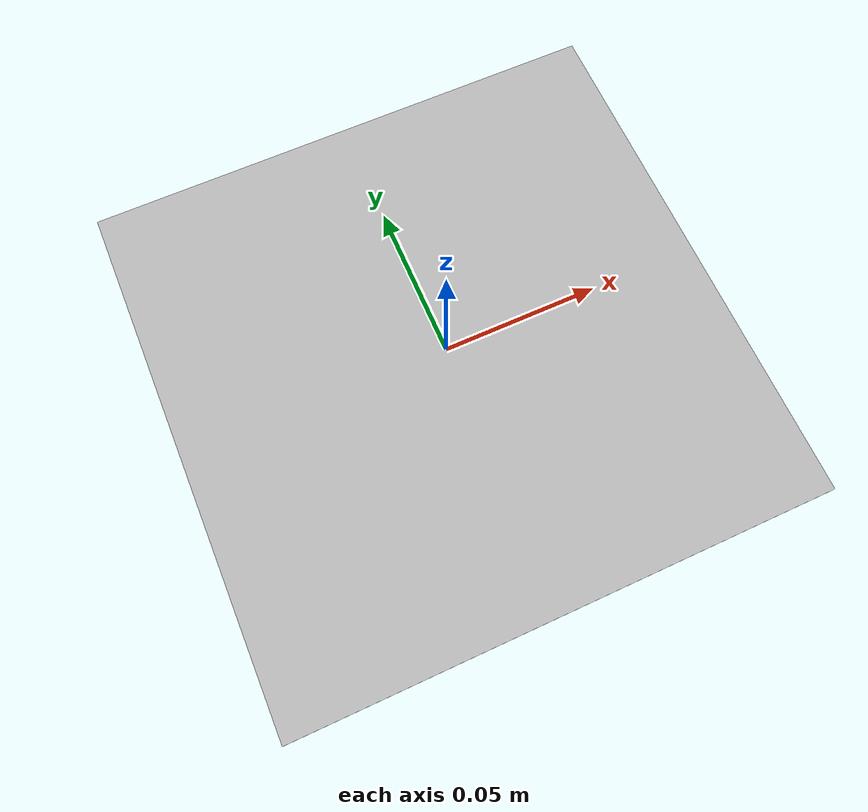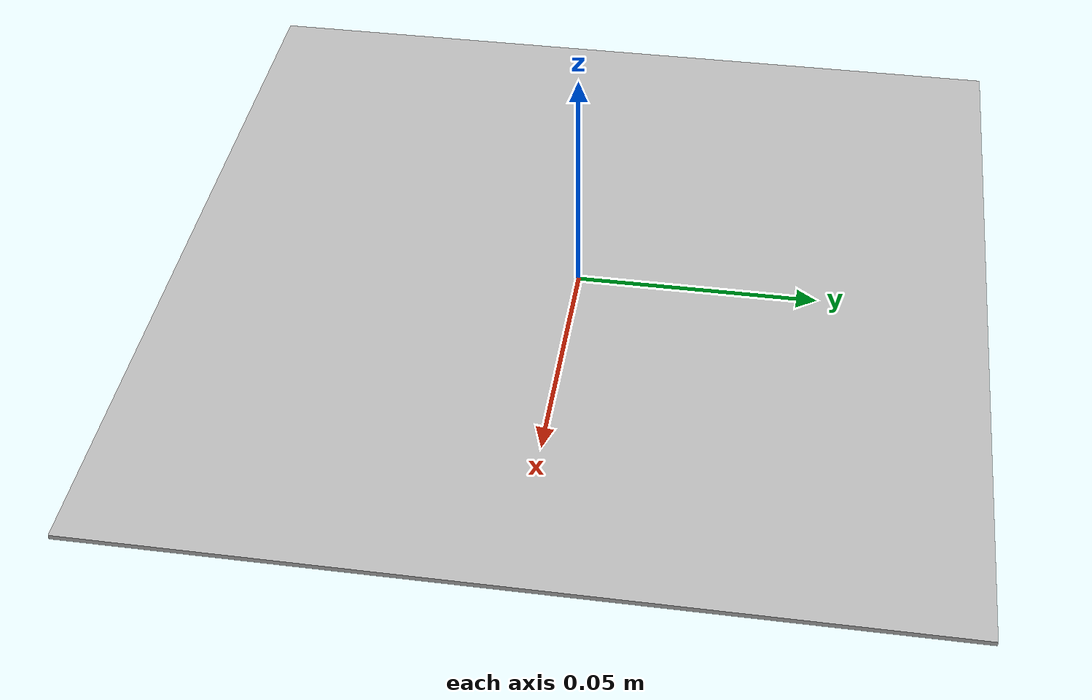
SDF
<?xml version="1.0" ?>
<sdf version="1.4">
  <model name="marker26_8cm">
    <static>0</static>
    <link name="marker">
      <inertial>
        <mass>0.1</mass>
        <inertia>
          <ixx>0.000000</ixx>
          <ixy>0.000000</ixy>
          <ixz>0.000000</ixz>
          <iyy>0.000000</iyy>
          <iyz>0.000000</iyz>
          <izz>0.000000</izz>
        </inertia>
      </inertial>
      <visual name="visual">
        <geometry>
          <box>
            <size>0.17 0.17 0.001</size>
            <!-- SIZE OF THE MARKER + MARGIN -->
          </box>
        </geometry>
        <material>
          <script>
	    <uri>model://marker26_8cm/material/scripts</uri>
	    <uri>model://marker26_8cm/material/textures</uri>
            <name>Aruco/marker26_8cm</name>
          </script>
        </material>
      </visual>
      <collision name="collision">
        <geometry>
          <box>
            <size>0.17 0.17 0.02</size>
            <!-- SIZE OF THE MARKER + MARGIN -->
          </box>
        </geometry>
        <surface>
          <bounce />
          <friction>
            <ode />
          </friction>
          <contact>
            <ode />
          </contact>
        </surface>
      </collision>
      <self_collide>1</self_collide>
      <kinematic>0</kinematic>
      <gravity>1</gravity>
    </link>
  </model>
</sdf>
